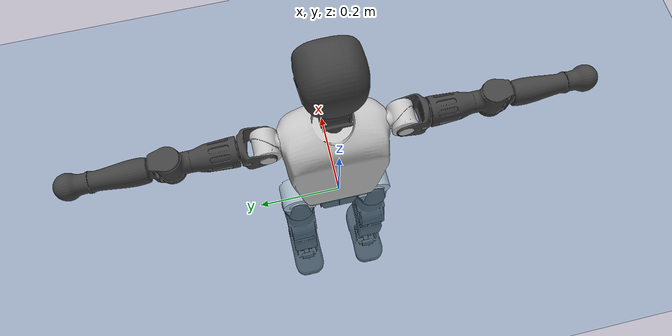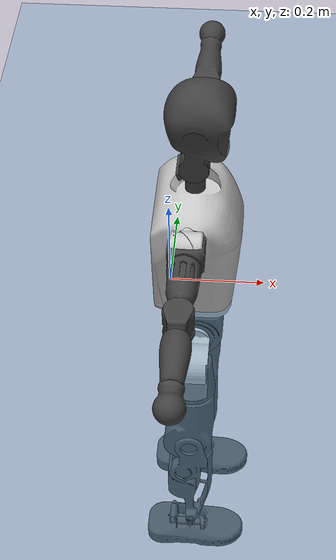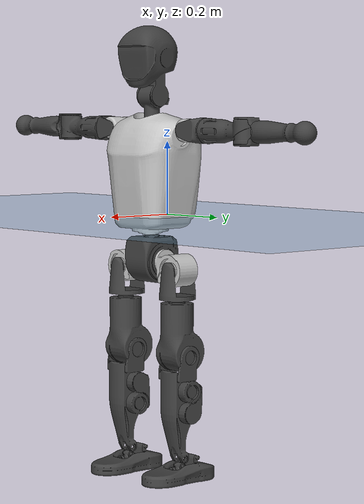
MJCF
<mujoco model="T1">
  <compiler angle="radian" assetdir="assets" balanceinertia="true" inertiafromgeom="false"/>

  <option timestep="0.005" density="1.2" viscosity="2e-05"/>

  <size nkey="1"/>

  <visual>
    <quality shadowsize="8192"/>
    <map shadowclip="0.5"/>
  </visual>

  <default>
    <default class="/">
      <joint armature="0.01" damping="0.01" frictionloss="0.1"/>
      <geom contype="0" conaffinity="0" group="1" solref="-1000 -80"/>
      <site size="0.01 0.005 0.005" group="5"/>
      <general forcelimited="true" biastype="affine" gainprm="25" biasprm="0 -25 -0.6"/>
      <default class="t1">
        <geom rgba="0.25 0.25 0.25 1"/>
        <default class="visual">
          <geom type="mesh" group="2"/>
        </default>
        <default class="collision">
          <geom group="3"/>
        </default>
        <default class="foot">
          <geom size="0.1115 0.05 0.015" type="box" condim="6" group="4" priority="1" solimp="0.015 1 0.015"/>
        </default>
        <default class="reward_collision_sphere">
          <geom group="5" rgba="1 0 0 1"/>
        </default>
      </default>
    </default>
  </default>

  <asset>
    <texture type="skybox" colorspace="auto" name="//unnamed_texture_0" builtin="gradient" rgb1="0.95 0.95 0.95" rgb2="0.95 0.95 0.95" width="100" height="600"/>
    <texture type="2d" colorspace="auto" name="texplane" builtin="checker" rgb1="0.345 0.575 0.748" rgb2="0.345 0.575 0.748" markrgb="1 1 1" width="512" height="512"/>
    <material name="MatPlane" class="/" texture="texplane" texuniform="true" texrepeat="2 2" specular="0.9"/>
    <mesh name="Trunk" class="/" file="Trunk.stl"/>
    <mesh name="H1" class="/" file="H1.stl"/>
    <mesh name="H2" class="/" file="H2.stl"/>
    <mesh name="AL1" class="/" file="AL1.stl"/>
    <mesh name="AL2" class="/" file="AL2.stl"/>
    <mesh name="AL3" class="/" file="AL3.stl"/>
    <mesh name="left_hand_link" class="/" file="left_hand_link.stl"/>
    <mesh name="AR1" class="/" file="AR1.stl"/>
    <mesh name="AR2" class="/" file="AR2.stl"/>
    <mesh name="AR3" class="/" file="AR3.stl"/>
    <mesh name="right_hand_link" class="/" file="right_hand_link.stl"/>
    <mesh name="Waist" class="/" file="Waist.stl"/>
    <mesh name="Hip_Pitch_Left" class="/" file="Hip_Pitch_Left.stl"/>
    <mesh name="Hip_Roll_Left" class="/" file="Hip_Roll_Left.stl"/>
    <mesh name="Hip_Yaw_Left" class="/" file="Hip_Yaw_Left.stl"/>
    <mesh name="Shank_Left" class="/" file="Shank_Left.stl"/>
    <mesh name="Ankle_Cross_Left" class="/" file="Ankle_Cross_Left.stl"/>
    <mesh name="left_foot_link" class="/" file="left_foot_link.stl"/>
    <mesh name="Hip_Pitch_Right" class="/" file="Hip_Pitch_Right.stl"/>
    <mesh name="Hip_Roll_Right" class="/" file="Hip_Roll_Right.stl"/>
    <mesh name="Hip_Yaw_Right" class="/" file="Hip_Yaw_Right.stl"/>
    <mesh name="Shank_Right" class="/" file="Shank_Right.stl"/>
    <mesh name="Ankle_Cross_Right" class="/" file="Ankle_Cross_Right.stl"/>
    <mesh name="right_foot_link" class="/" file="right_foot_link.stl"/>
  </asset>

  <worldbody>
    <geom name="floor" class="/" size="100 100 0.125" type="plane" group="0" material="MatPlane"/>
    <light name="toplight_shadow" class="/" pos="0 0 5" dir="0.0990148 0.0990148 -0.990148" type="directional" ambient="0.04 0.04 0.04" diffuse="0.55 0.55 0.55" specular="0.12 0.12 0.12"/>
    <light name="toplight_fill" class="/" pos="0 0 5" dir="0.0990148 0.0990148 -0.990148" type="directional" castshadow="false" ambient="0.04 0.04 0.04" diffuse="0.3 0.3 0.3" specular="0.08 0.08 0.08"/>
    <body name="trunk" childclass="t1" pos="9.50212e-05 0.000920584 0.000310939" quat="1 -0.000276816 -7.61254e-05 0.000608471">
      <inertial pos="0.0472175 -0.00131249 0.113914" quat="0.999957 0.000195592 -0.0092082 -0.000645895" mass="11.1814" diaginertia="0.0476871 0.0784588 0.0780209"/>
      <joint name="//unnamed_joint_0" type="free" armature="0" damping="0" frictionloss="0"/>
      <geom name="//unnamed_geom_1" class="visual" rgba="0.76 0.76 0.76 1" mesh="Trunk"/>
      <geom name="//unnamed_geom_2" class="collision" size="0.0738466 0.0984621 0.147693" pos="0.0526517 0 0.128951" type="box"/>
      <geom name="//unnamed_geom_3" class="reward_collision_sphere" size="0.113231" pos="0.0526517 0 0.107459"/>
      <geom name="//unnamed_geom_4" class="reward_collision_sphere" size="0.0147693" pos="0.0526517 0.0851482 0"/>
      <geom name="//unnamed_geom_5" class="reward_collision_sphere" size="0.0147693" pos="0.0526517 -0.0851482 0"/>
      <geom name="//unnamed_geom_6" class="reward_collision_sphere" size="0.0147693" pos="0.0526517 0.107187 0.193427"/>
      <geom name="//unnamed_geom_7" class="reward_collision_sphere" size="0.0147693" pos="0.0526517 -0.107187 0.193427"/>
      <site name="imu" pos="-0.000995706 -0.000306167 0.000933902" size="0.00984621"/>
      <camera name="track" pos="0 -2.00349 0" quat="0.707107 0.707107 0 0" mode="trackcom"/>
      <camera name="ego_camera" pos="0.107058 0 0.451329" quat="-0.5 -0.5 0.5 0.5"/>
      <body name="H1" pos="0.0553957 -0.00112293 0.259715" quat="1 -2.73894e-05 -0.000509636 -2.57391e-05">
        <inertial pos="-0.000512561 -8.08663e-05 0.0607052" quat="0.767705 -0.0134916 -0.000211936 0.640662" mass="0.413215" diaginertia="0.000122277 0.000217511 0.000210459"/>
        <joint name="AAHead_yaw" pos="0 0 0" axis="0.00372535 -0.00535356 0.999979" stiffness="0.00342836" range="-1.56122 1.56184" armature="0.0101772" damping="0.00950875" frictionloss="0.0975562"/>
        <geom name="//unnamed_geom_8" class="visual" mesh="H1"/>
        <body name="H2" pos="-0.00118389 0.00123002 0.0664566" quat="1 -0.000120595 -0.000125933 4.44027e-05">
          <inertial pos="0.00525809 0.00180333 0.106295" quat="0.988387 0.107789 -0.0742482 -0.0771967" mass="0.601334" diaginertia="0.00106648 0.00192036 0.00245628"/>
          <joint name="Head_pitch" pos="0 0 0" axis="0.00439007 -0.999986 0.00287929" range="-1.21718 0.349864" armature="0.00915033" damping="0.00601352" frictionloss="0.108232"/>
          <geom name="//unnamed_geom_9" class="visual" mesh="H2"/>
          <geom name="//unnamed_geom_10" class="collision" size="0.0787697" pos="0.00877528 0 0.118205"/>
          <geom name="//unnamed_geom_11" class="reward_collision_sphere" size="0.0886159" pos="0.0175506 0 0.107459"/>
        </body>
      </body>
      <body name="AL1" pos="0.0521534 0.105693 0.233721" quat="1 -1.23911e-05 0.000417212 -0.000127731">
        <inertial pos="-0.00219812 0.0454225 0.000663272" quat="0.504301 0.494717 -0.506063 0.494809" mass="0.504775" diaginertia="0.000707211 0.00129992 0.00041671"/>
        <joint name="Left_Shoulder_Pitch" pos="0 0 0" axis="0.00212875 0.999958 -0.00887514" range="-3.31833 1.2388" armature="0.00967932" damping="0.00753628" frictionloss="0.098685"/>
        <geom name="//unnamed_geom_12" class="visual" rgba="0.76 0.76 0.76 1" mesh="AL1"/>
        <body name="AL2" pos="0.000566233 0.0470974 -1.212e-05" quat="1 8.95964e-05 -6.02379e-06 5.45726e-05">
          <inertial pos="0.00263111 0.0388177 -0.000842663" quat="0.488332 0.5111 -0.488874 0.511186" mass="0.154144" diaginertia="0.000209125 0.000348016 0.00025543"/>
          <joint name="Left_Shoulder_Roll" pos="0 0 0" axis="-0.999996 -0.00235403 -0.00124846" range="-1.5665 1.74973" armature="0.00983325" damping="0.00740621" frictionloss="0.0980964"/>
          <geom name="//unnamed_geom_13" class="visual" mesh="AL2"/>
          <body name="AL3" pos="0.000324747 0.0606132 -0.000564885" quat="1 5.4169e-05 -8.55311e-05 -7.41904e-05">
            <inertial pos="0.000375575 0.085387 8.52143e-05" quat="0.705213 0.708955 -0.00138954 0.00745247" mass="0.968829" diaginertia="0.00659185 0.0128405 0.000864521"/>
            <joint name="Left_Elbow_Pitch" pos="0 0 0" axis="0.000548581 -1 -4.64332e-05" range="-2.25889 2.26113" armature="0.00983397" damping="0.020119" frictionloss="0.106667"/>
            <geom name="//unnamed_geom_14" class="visual" mesh="AL3"/>
            <geom name="//unnamed_geom_15" class="collision" size="0.0295386 0.0738466" pos="0 0.0500872 0" quat="0.707105 0.707108 0 0" type="cylinder"/>
            <geom name="//unnamed_geom_16" class="reward_collision_sphere" size="0.0354464"/>
            <body name="left_hand_link" pos="0.00162217 0.147358 0.000394045" quat="1 6.19428e-05 -4.29413e-05 9.95252e-05">
              <inertial pos="0.00104225 0.110223 -0.000346919" quat="0.708958 0.705241 0.000757419 -0.0034923" mass="0.311633" diaginertia="0.00421458 0.00833234 0.000308651"/>
              <joint name="Left_Elbow_Yaw" pos="0 0 0" axis="-6.93736e-05 0.000584891 1" range="-2.45345 0.00666339" armature="0.0095562" damping="0.00711569" frictionloss="0.0983846"/>
              <geom name="//unnamed_geom_17" class="visual" mesh="left_hand_link"/>
              <geom name="//unnamed_geom_18" class="collision" size="0.0295386 0.0861544" pos="0 0.130227 0" quat="0.707105 0.707108 0 0" type="cylinder"/>
              <geom name="//unnamed_geom_19" class="reward_collision_sphere" size="0.0492311"/>
              <geom name="//unnamed_geom_20" class="reward_collision_sphere" size="0.0344617" pos="0 0.110192 0"/>
              <geom name="//unnamed_geom_21" class="reward_collision_sphere" size="0.0344617" pos="0 0.215375 0"/>
            </body>
          </body>
        </body>
      </body>
      <body name="AR1" pos="0.0492502 -0.107476 0.236112" quat="0.999999 -0.000824201 0.000469665 -0.000419545">
        <inertial pos="-0.000851222 -0.0442063 -0.00109557" quat="0.505205 0.495535 -0.503208 0.495979" mass="0.514305" diaginertia="0.000723351 0.00132455 0.000425571"/>
        <joint name="Right_Shoulder_Pitch" pos="0 0 0" axis="8.45964e-05 -1 9.6455e-05" range="-1.23663 3.31189" armature="0.0102183" damping="0.00146393" frictionloss="0.103291"/>
        <geom name="//unnamed_geom_22" class="visual" rgba="0.76 0.76 0.76 1" mesh="AR1"/>
        <body name="AR2" pos="-0.000707996 -0.0463492 -0.00131401" quat="1 -0.000204535 -0.000118218 0.000414124">
          <inertial pos="0.00435136 -0.0386973 0.000318327" quat="0.511141 0.488385 -0.5122 0.487715" mass="0.153082" diaginertia="0.000209406 0.000345501 0.000253227"/>
          <joint name="Right_Shoulder_Roll" pos="0 0 0" axis="-0.999949 0.00913615 -0.00441178" range="-1.7203 1.59036" armature="0.00979574" damping="0.0035843" frictionloss="0.0958744"/>
          <geom name="//unnamed_geom_23" class="visual" mesh="AR2"/>
          <body name="AR3" pos="-0.000130805 -0.0609112 -0.000207779" quat="1 -0.000347815 -0.000173729 0.000367025">
            <inertial pos="0.00158668 -0.0854215 -0.00106318" quat="0.707551 0.706662 0.00115324 -0.00035365" mass="0.975776" diaginertia="0.00688072 0.0133952 0.000918368"/>
            <joint name="Right_Elbow_Pitch" pos="0 0 0" axis="-0.00433672 0.999991 2.94838e-05" stiffness="0.00232011" range="-2.25425 2.22684" armature="0.00977474" damping="0.00891462" frictionloss="0.0938075"/>
            <geom name="//unnamed_geom_24" class="visual" mesh="AR3"/>
            <geom name="//unnamed_geom_25" class="collision" size="0.0295386 0.0738466" pos="0 -0.0500872 0" quat="0.707105 0.707108 0 0" type="cylinder"/>
            <geom name="//unnamed_geom_26" class="reward_collision_sphere" size="0.0354464"/>
            <body name="right_hand_link" pos="0.000108294 -0.146691 0.000371697" quat="1 -0.000296274 -3.1665e-05 0.000256175">
              <inertial pos="0.00120996 -0.110601 0.000103482" quat="0.706605 0.707608 -0.000376856 -0.000107764" mass="0.302928" diaginertia="0.00404089 0.00805412 0.000305986"/>
              <joint name="Right_Elbow_Yaw" pos="0 0 0" axis="0.000686224 0.00147448 0.999999" stiffness="0.00322339" range="-0.00602584 2.4196" armature="0.0102396" damping="0.00624858" frictionloss="0.0986695"/>
              <geom name="//unnamed_geom_27" class="visual" mesh="right_hand_link"/>
              <geom name="//unnamed_geom_28" class="collision" size="0.0295386 0.0861544" pos="0 -0.130227 0" quat="0.707105 0.707108 0 0" type="cylinder"/>
              <geom name="//unnamed_geom_29" class="reward_collision_sphere" size="0.0492311"/>
              <geom name="//unnamed_geom_30" class="reward_collision_sphere" size="0.0344617" pos="0 -0.110192 0"/>
              <geom name="//unnamed_geom_31" class="reward_collision_sphere" size="0.0344617" pos="0 -0.215375 0"/>
            </body>
          </body>
        </body>
      </body>
      <body name="Waist" pos="0.0551277 -0.00239698 -0.124849" quat="1 4.95006e-05 -2.794e-06 -1.80617e-05">
        <inertial pos="0.00088841 -0.000188793 0.00740921" quat="0.983649 0.000348779 -0.180074 0.00271616" mass="2.46248" diaginertia="0.00283232 0.00543666 0.00682706"/>
        <joint name="Waist" pos="0 0 0" axis="-0.00469788 0.00234022 0.999986" stiffness="0.000629497" range="-1.55071 1.59066" armature="0.0100872" damping="0.00146026" frictionloss="0.0950177"/>
        <geom name="//unnamed_geom_32" class="visual" mesh="Waist"/>
        <body name="Hip_Pitch_Left" pos="0.000625665 0.107003 0.000346651" quat="1 -0.000150616 -0.000425765 0.000386914">
          <inertial pos="0.00152325 -0.00706958 -0.0207132" quat="0.975282 0.220416 0.0153826 -0.00228546" mass="0.991231" diaginertia="0.000950391 0.00148831 0.00181616"/>
          <joint name="Left_Hip_Pitch" pos="0 0 0" axis="-0.0006326 0.999999 -0.00141499" range="-1.79405 1.58939" armature="0.00995378" damping="0.00503193" frictionloss="0.0969096"/>
          <geom name="//unnamed_geom_33" class="visual" rgba="0.76 0.76 0.76 1" mesh="Hip_Pitch_Left"/>
          <body name="Hip_Roll_Left" pos="0.00197504 -0.000242259 -0.0221426" quat="1 -2.22519e-05 8.37863e-05 -0.000143503">
            <inertial pos="0.000862276 -0.000128098 -0.0584223" quat="0.706393 -0.00357528 -0.00651287 0.707781" mass="0.375355" diaginertia="0.00092122 0.00152864 0.000733289"/>
            <joint name="Left_Hip_Roll" pos="0 0 0" axis="-0.999995 -0.00200811 -0.00257586" range="-1.54971 0.229512" armature="0.0100332" damping="0.00595121" frictionloss="0.10107"/>
            <geom name="//unnamed_geom_34" class="visual" mesh="Hip_Roll_Left"/>
            <geom name="//unnamed_geom_35" class="reward_collision_sphere" size="0.0541542"/>
            <body name="Hip_Yaw_Left" pos="-1.90486e-05 0.000760702 -0.0863635" quat="1 -3.59923e-05 3.02997e-05 1.89599e-05">
              <inertial pos="-0.00528681 -0.000642345 -0.0967757" quat="0.694228 -0.0342312 -0.0336013 0.718155" mass="2.03492" diaginertia="0.0131129 0.0247205 0.00362894"/>
              <joint name="Left_Hip_Yaw" pos="0 0 0" axis="0.000179532 0.000987215 -0.999999" range="-1.00995 1.0466" armature="0.009457" damping="0" frictionloss="0.0994869"/>
              <geom name="//unnamed_geom_36" class="visual" mesh="Hip_Yaw_Left"/>
              <geom name="//unnamed_geom_37" class="collision" size="0.0492311 0.0787697" type="cylinder"/>
              <body name="Shank_Left" pos="-0.0119109 0.000789499 -0.145843" quat="1 -4.76851e-05 0.000137944 -0.000412993">
                <inertial pos="-0.00588688 0.000725141 -0.134286" quat="0.997611 0.00129689 -0.0237734 0.0648423" mass="1.68204" diaginertia="0.018318 0.0352236 0.002693"/>
                <joint name="Left_Knee_Pitch" pos="0 0 0" axis="-0.00298152 0.999988 -0.00384415" range="-0.015881 2.34111" armature="0.00983698" damping="0.0169876" frictionloss="0.101373"/>
                <geom name="//unnamed_geom_38" class="visual" mesh="Shank_Left"/>
                <geom name="//unnamed_geom_39" class="collision" size="0.0492311 0.0738466" pos="0 0 -0.128951" type="cylinder"/>
                <geom name="//unnamed_geom_40" class="reward_collision_sphere" size="0.0640004"/>
                <body name="Ankle_Cross_Left" pos="0.00117802 0.000808054 -0.301781" quat="1 1.28563e-06 -0.000204439 -0.000199488">
                  <inertial pos="-0.00445017 0.00151718 -0.00874433" quat="0.443719 0.550475 0.551496 0.442654" mass="0.0697917" diaginertia="1.49672e-05 2.54455e-05 1.62292e-05"/>
                  <joint name="Left_Ankle_Pitch" pos="0 0 0" axis="0.00186419 0.999998 0.000997203" range="-0.863656 0.347404" armature="0.00939346" damping="0.00372605" frictionloss="0.0948698"/>
                  <geom name="//unnamed_geom_41" class="visual" mesh="Ankle_Cross_Left"/>
                  <body name="left_foot_link" pos="0.000442896 -0.000953607 -0.0116447" quat="1 -0.000856385 -0.000308576 0.00011111">
                    <inertial pos="-0.0015316 -0.000174831 -0.00887891" quat="-0.00356354 0.619255 0.000789093 0.785181" mass="0.656855" diaginertia="0.00138783 0.00239818 0.00314499"/>
                    <joint name="Left_Ankle_Roll" pos="0 0 0" axis="-0.999995 -5.90455e-05 -0.00320591" range="-0.464056 0.412099" armature="0.0094266" damping="0.00700983" frictionloss="0.0921926"/>
                    <geom name="//unnamed_geom_42" class="visual" mesh="left_foot_link"/>
                    <geom name="left_foot" class="foot" size="0.104112 0.0507565 0.0148774" pos="0.00877528 0 -0.0161189"/>
                    <geom name="//unnamed_geom_44" class="reward_collision_sphere" size="0.0512003" pos="0.00877528 0 -0.0161189"/>
                    <geom name="//unnamed_geom_45" class="reward_collision_sphere" size="0.0295386" pos="0.0833652 -0.0230401 -0.0161189"/>
                    <geom name="//unnamed_geom_46" class="reward_collision_sphere" size="0.0295386" pos="-0.061427 -0.0230401 -0.0161189"/>
                    <site name="left_foot" class="foot" pos="0.00877528 0 -0.0161189" size="0.00984621"/>
                  </body>
                </body>
              </body>
            </body>
          </body>
        </body>
        <body name="Hip_Pitch_Right" pos="-0.00183816 -0.107168 -0.000192899" quat="1 -1.17794e-05 4.4163e-06 -4.90429e-06">
          <inertial pos="-0.000386351 0.00747363 -0.0198989" quat="0.973448 -0.228284 0.0167257 -0.00247965" mass="0.97078" diaginertia="0.000954637 0.00147439 0.00179541"/>
          <joint name="Right_Hip_Pitch" pos="0 0 0" axis="-0.000551597 -0.999999 0.00109282" stiffness="0.00567651" range="-1.5553 1.80671" armature="0.0097186" damping="0.00861079" frictionloss="0.103328"/>
          <geom name="//unnamed_geom_47" class="visual" rgba="0.76 0.76 0.76 1" mesh="Hip_Pitch_Right"/>
          <body name="Hip_Roll_Right" pos="0.00143952 -0.00139754 -0.0219612" quat="1 -1.5233e-05 -9.44404e-06 -4.70701e-06">
            <inertial pos="0.000594408 -0.000996775 -0.0577251" quat="0.707115 -0.00598922 -0.00593046 0.707048" mass="0.370375" diaginertia="0.000898849 0.00152117 0.000732699"/>
            <joint name="Right_Hip_Roll" pos="0 0 0" axis="-0.999999 0.0013227 -0.000875732" stiffness="0.00549264" range="-0.201669 1.53474" armature="0.00996957" damping="0" frictionloss="0.0907713"/>
            <geom name="//unnamed_geom_48" class="visual" mesh="Hip_Roll_Right"/>
            <geom name="//unnamed_geom_49" class="reward_collision_sphere" size="0.0541542"/>
            <body name="Hip_Yaw_Right" pos="0.00187245 -5.20308e-05 -0.0881743" quat="1 0.000301954 0.000154426 8.11296e-05">
              <inertial pos="-0.0063148 8.12685e-05 -0.0962984" quat="0.71857 -0.0238157 -0.0352887 0.694151" mass="2.04898" diaginertia="0.0131284 0.0253508 0.00364263"/>
              <joint name="Right_Hip_Yaw" pos="0 0 0" axis="0.00439475 -0.00291897 -0.999986" range="-0.990957 1.01585" armature="0.00976343" damping="0.00734201" frictionloss="0.100425"/>
              <geom name="//unnamed_geom_50" class="visual" mesh="Hip_Yaw_Right"/>
              <geom name="//unnamed_geom_51" class="collision" size="0.0492311 0.0787697" type="cylinder"/>
              <body name="Shank_Right" pos="-0.0102543 -0.00108646 -0.143654" quat="1 0.000122096 0.000110753 -8.56245e-05">
                <inertial pos="-0.00625532 0.000227105 -0.13154" quat="0.999471 -0.00193104 -0.0168011 -0.0277964" mass="1.75034" diaginertia="0.0186061 0.0356531 0.00283019"/>
                <joint name="Right_Knee_Pitch" pos="0 0 0" axis="-0.00704075 -0.999975 -0.000854498" range="-2.34693 -0.0109722" armature="0.00979733" damping="0.0150625" frictionloss="0.0979372"/>
                <geom name="//unnamed_geom_52" class="visual" mesh="Shank_Right"/>
                <geom name="//unnamed_geom_53" class="collision" size="0.0492311 0.0738466" pos="0 0 -0.128951" type="cylinder"/>
                <geom name="//unnamed_geom_54" class="reward_collision_sphere" size="0.0640004"/>
                <body name="Ankle_Cross_Right" pos="-0.00118432 -0.00102965 -0.301984" quat="1 -1.80582e-06 0.000218379 -0.000286549">
                  <inertial pos="-0.00377859 0.000818398 -0.00818379" quat="0.443072 0.550992 0.551071 0.443188" mass="0.0698687" diaginertia="1.47056e-05 2.59296e-05 1.62149e-05"/>
                  <joint name="Right_Ankle_Pitch" pos="0 0 0" axis="-0.000549854 -0.999998 -0.0018805" range="-0.390541 0.876644" armature="0.0098331" damping="0.0096191" frictionloss="0.0962013"/>
                  <geom name="//unnamed_geom_55" class="visual" mesh="Ankle_Cross_Right"/>
                  <body name="right_foot_link" pos="0.000993164 7.03346e-05 -0.0135895" quat="1 8.80077e-06 -0.000181077 -9.32506e-06">
                    <inertial pos="-0.000150535 0.000404205 -0.00994501" quat="-0.000161473 0.620073 0.0046086 0.784531" mass="0.675397" diaginertia="0.00141818 0.00242028 0.00312534"/>
                    <joint name="Right_Ankle_Roll" pos="0 0 0" axis="-0.999996 0.00265245 0.000526754" range="-0.44522 0.453483" armature="0.0099949" damping="0.0089993" frictionloss="0.0901216"/>
                    <geom name="//unnamed_geom_56" class="visual" mesh="right_foot_link"/>
                    <geom name="right_foot" class="foot" size="0.0988421 0.04583 0.01473" pos="0.00877528 0 -0.0161189"/>
                    <geom name="//unnamed_geom_58" class="reward_collision_sphere" size="0.0393849"/>
                    <geom name="//unnamed_geom_59" class="reward_collision_sphere" size="0.0295386" pos="0.00877528 0 -0.0161189"/>
                    <geom name="//unnamed_geom_60" class="reward_collision_sphere" size="0.0295386" pos="0.0833652 0.0230401 -0.0161189"/>
                    <geom name="//unnamed_geom_61" class="reward_collision_sphere" size="0.0295386" pos="-0.061427 0.0230401 -0.0161189"/>
                    <site name="right_foot" class="foot" pos="0.00877528 0 -0.0161189" size="0.00984621"/>
                  </body>
                </body>
              </body>
            </body>
          </body>
        </body>
      </body>
    </body>
  </worldbody>

  <contact>
    <pair class="/" geom1="floor" geom2="left_foot" name="//unnamed_contact_0"/>
    <pair class="/" geom1="floor" geom2="right_foot" name="//unnamed_contact_1"/>
  </contact>

  <actuator>
    <general name="AAHead_yaw" class="/" joint="AAHead_yaw" forcerange="-7.06105 7.06105" gainprm="23.4049" biasprm="0 -23.4049 -0.561719"/>
    <general name="Head_pitch" class="/" joint="Head_pitch" forcerange="-6.71669 6.71669" gainprm="23.4049" biasprm="0 -23.4049 -0.561719"/>
    <general name="Left_Shoulder_Pitch" class="/" joint="Left_Shoulder_Pitch" forcerange="-16.2758 16.2758" gainprm="23.4049" biasprm="0 -23.4049 -0.561719"/>
    <general name="Left_Shoulder_Roll" class="/" joint="Left_Shoulder_Roll" forcerange="-17.5244 17.5244" gainprm="23.4049" biasprm="0 -23.4049 -0.561719"/>
    <general name="Left_Elbow_Pitch" class="/" joint="Left_Elbow_Pitch" forcerange="-18.4057 18.4057" gainprm="23.4049" biasprm="0 -23.4049 -0.561719"/>
    <general name="Left_Elbow_Yaw" class="/" joint="Left_Elbow_Yaw" forcerange="-18.016 18.016" gainprm="23.4049" biasprm="0 -23.4049 -0.561719"/>
    <general name="Right_Shoulder_Pitch" class="/" joint="Right_Shoulder_Pitch" forcerange="-17.7167 17.7167" gainprm="23.4049" biasprm="0 -23.4049 -0.561719"/>
    <general name="Right_Shoulder_Roll" class="/" joint="Right_Shoulder_Roll" forcerange="-17.5451 17.5451" gainprm="23.4049" biasprm="0 -23.4049 -0.561719"/>
    <general name="Right_Elbow_Pitch" class="/" joint="Right_Elbow_Pitch" forcerange="-18.3251 18.3251" gainprm="23.4049" biasprm="0 -23.4049 -0.561719"/>
    <general name="Right_Elbow_Yaw" class="/" joint="Right_Elbow_Yaw" forcerange="-18.175 18.175" gainprm="23.4049" biasprm="0 -23.4049 -0.561719"/>
    <general name="Waist" class="/" joint="Waist" forcerange="-30.672 30.672" gainprm="23.4049" biasprm="0 -23.4049 -0.561719"/>
    <general name="Left_Hip_Pitch" class="/" joint="Left_Hip_Pitch" forcerange="-43.7734 43.7734" gainprm="23.4049" biasprm="0 -23.4049 -0.561719"/>
    <general name="Left_Hip_Roll" class="/" joint="Left_Hip_Roll" forcerange="-30.5342 30.5342" gainprm="23.4049" biasprm="0 -23.4049 -0.561719"/>
    <general name="Left_Hip_Yaw" class="/" joint="Left_Hip_Yaw" forcerange="-30.538 30.538" gainprm="23.4049" biasprm="0 -23.4049 -0.561719"/>
    <general name="Left_Knee_Pitch" class="/" joint="Left_Knee_Pitch" forcerange="-56.6773 56.6773" gainprm="23.4049" biasprm="0 -23.4049 -0.561719"/>
    <general name="Left_Ankle_Pitch" class="/" joint="Left_Ankle_Pitch" forcerange="-20.8367 20.8367" gainprm="23.4049" biasprm="0 -23.4049 -0.561719"/>
    <general name="Left_Ankle_Roll" class="/" joint="Left_Ankle_Roll" forcerange="-14.1874 14.1874" gainprm="23.4049" biasprm="0 -23.4049 -0.561719"/>
    <general name="Right_Hip_Pitch" class="/" joint="Right_Hip_Pitch" forcerange="-44.1215 44.1215" gainprm="23.4049" biasprm="0 -23.4049 -0.561719"/>
    <general name="Right_Hip_Roll" class="/" joint="Right_Hip_Roll" forcerange="-30.7001 30.7001" gainprm="23.4049" biasprm="0 -23.4049 -0.561719"/>
    <general name="Right_Hip_Yaw" class="/" joint="Right_Hip_Yaw" forcerange="-29.452 29.452" gainprm="23.4049" biasprm="0 -23.4049 -0.561719"/>
    <general name="Right_Knee_Pitch" class="/" joint="Right_Knee_Pitch" forcerange="-59.562 59.562" gainprm="23.4049" biasprm="0 -23.4049 -0.561719"/>
    <general name="Right_Ankle_Pitch" class="/" joint="Right_Ankle_Pitch" forcerange="-19.8305 19.8305" gainprm="23.4049" biasprm="0 -23.4049 -0.561719"/>
    <general name="Right_Ankle_Roll" class="/" joint="Right_Ankle_Roll" forcerange="-15.1249 15.1249" gainprm="23.4049" biasprm="0 -23.4049 -0.561719"/>
  </actuator>

  <sensor>
    <gyro site="imu" name="imu_angular_velocity"/>
    <velocimeter site="imu" name="imu_linear_velocity"/>
    <framelinvel objtype="site" objname="left_foot" name="left_foot_global_linear_velocity"/>
    <framelinvel objtype="site" objname="right_foot" name="right_foot_global_linear_velocity"/>
  </sensor>

  <keyframe>
    <key name="home" qpos="0 0 0.6385 1 0 0 0 0 0 0 1.4 0 -0.4 0 -1.4 0 0.4 0 -0.4 0 0 0.8 -0.4 0 0.4 0 0 -0.8 0.4 0"/>
  </keyframe>
</mujoco>
